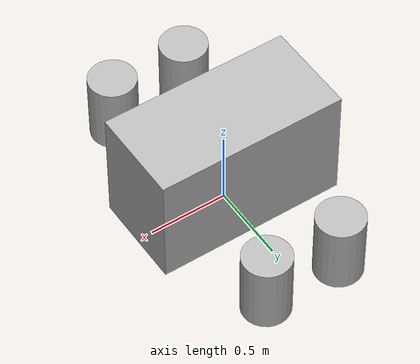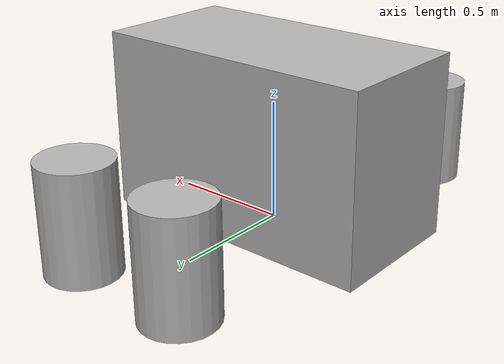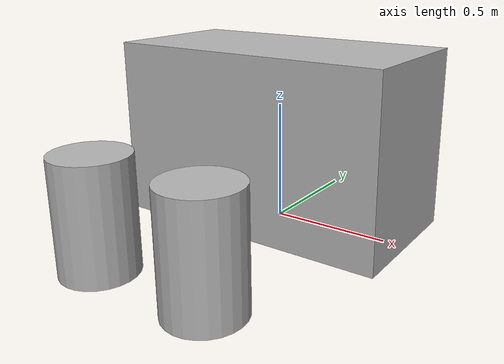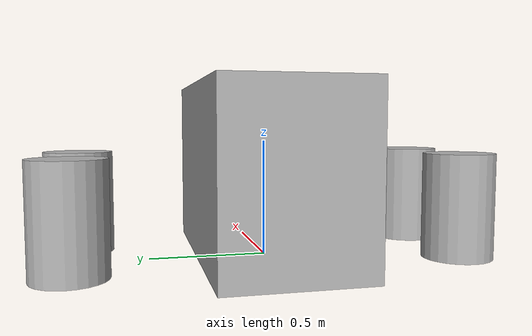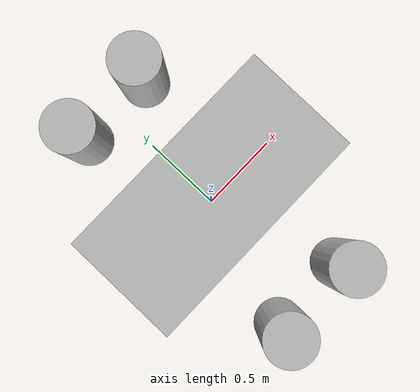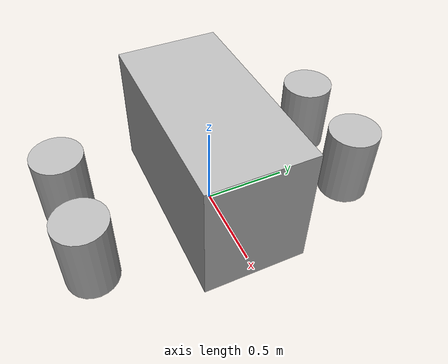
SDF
<?xml version="1.0"?>
<sdf version="1.7">

<model name="table_set">

  <static>true</static>

  <link name="table_set_link">

    <!-- Table -->

    <collision name="table_collision">
      <pose>0 0 0.375 0 0 0</pose>

      <geometry>
        <box>
          <size>1.2 0.6 0.75</size>
        </box>
      </geometry>
    </collision>

    <visual name="table_visual">
      <pose>0 0 0.375 0 0 0</pose>

      <geometry>
        <box>
          <size>1.2 0.6 0.75</size>
        </box>
      </geometry>
    </visual>

    <!-- Chair 1 -->

    <collision name="chair1_collision">
      <pose>-0.25 0.80 0.225 0 0 0</pose>

      <geometry>
        <cylinder>
          <radius>0.15</radius>
          <length>0.45</length>
        </cylinder>
      </geometry>
    </collision>

    <visual name="chair1_visual">
      <pose>-0.25 0.80 0.225 0 0 0</pose>

      <geometry>
        <cylinder>
          <radius>0.15</radius>
          <length>0.45</length>
        </cylinder>
      </geometry>
    </visual>

    <!-- Chair 2 -->

    <collision name="chair2_collision">
      <pose>0.25 0.80 0.225 0 0 0</pose>

      <geometry>
        <cylinder>
          <radius>0.15</radius>
          <length>0.45</length>
        </cylinder>
      </geometry>
    </collision>

    <visual name="chair2_visual">
      <pose>0.25 0.80 0.225 0 0 0</pose>

      <geometry>
        <cylinder>
          <radius>0.15</radius>
          <length>0.45</length>
        </cylinder>
      </geometry>
    </visual>

    <!-- Chair 3 -->

    <collision name="chair3_collision">
      <pose>-0.25 -0.80 0.225 0 0 0</pose>

      <geometry>
        <cylinder>
          <radius>0.15</radius>
          <length>0.45</length>
        </cylinder>
      </geometry>
    </collision>

    <visual name="chair3_visual">
      <pose>-0.25 -0.80 0.225 0 0 0</pose>

      <geometry>
        <cylinder>
          <radius>0.15</radius>
          <length>0.45</length>
        </cylinder>
      </geometry>
    </visual>

    <!-- Chair 4 -->

    <collision name="chair4_collision">
      <pose>0.25 -0.80 0.225 0 0 0</pose>

      <geometry>
        <cylinder>
          <radius>0.15</radius>
          <length>0.45</length>
        </cylinder>
      </geometry>
    </collision>

    <visual name="chair4_visual">
      <pose>0.25 -0.80 0.225 0 0 0</pose>

      <geometry>
        <cylinder>
          <radius>0.15</radius>
          <length>0.45</length>
        </cylinder>
      </geometry>
    </visual>

  </link>

</model>
</sdf>
